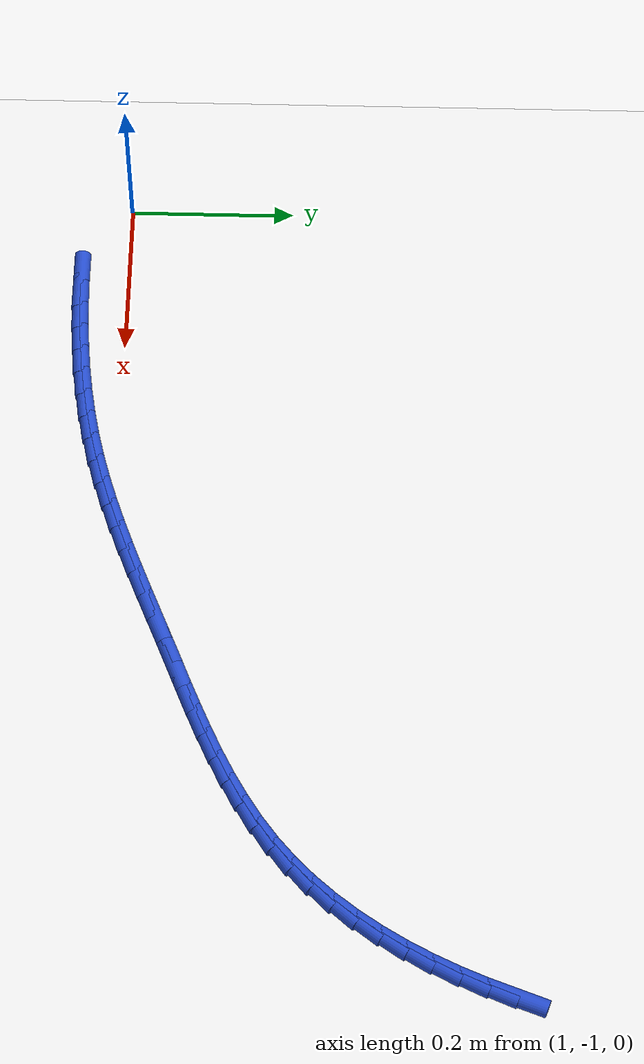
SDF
<sdf version="1.6">
 <world name="default">
  <model name="ground_plane">
   <static>1</static>
   <link name="link">
    <collision name="collision">
     <geometry><plane><normal>0 0 1</normal><size>100 100</size></plane></geometry>
     <surface><friction><ode><mu>100</mu><mu2>50</mu2></ode></friction></surface>
    </collision>
    <visual name="visual">
     <cast_shadows>0</cast_shadows>
     <geometry><plane><normal>0 0 1</normal><size>100 100</size></plane></geometry>
     <material>
      <script><uri>file://media/materials/scripts/gazebo.material</uri><name>Gazebo/WhiteGlow</name></script>
     </material>
    </visual>
   </link>
  </model>
  <model name="line">
   <link name="link_121">
    <pose>2.022401157249746 -0.5406401266735548 0.01 0 1.57 1.2201460712771854</pose>
    <collision name="collision">
     <geometry><cylinder><radius>0.01</radius><length>0.08</length></cylinder></geometry>
    </collision>
    <visual name="visual">
     <material>
      <script><name>Gazebo/Blue</name><uri>file://media/materials/scripts/gazebo.material</uri></script>
     </material>
     <geometry><cylinder><radius>0.01</radius><length>0.08</length></cylinder></geometry>
    </visual>
   </link>
   <link name="link_122">
    <pose>2.0113496812196408 -0.5708547694940168 0.01 0 1.57 1.1777153300258625</pose>
    <collision name="collision">
     <geometry><cylinder><radius>0.01</radius><length>0.08</length></cylinder></geometry>
    </collision>
    <visual name="visual">
     <material>
      <script><name>Gazebo/Blue</name><uri>file://media/materials/scripts/gazebo.material</uri></script>
     </material>
     <geometry><cylinder><radius>0.01</radius><length>0.08</length></cylinder></geometry>
    </visual>
   </link>
   <link name="link_123">
    <pose>1.9989865947254755 -0.6006696888430385 0.01 0 1.57 1.132963567516509</pose>
    <collision name="collision">
     <geometry><cylinder><radius>0.01</radius><length>0.08</length></cylinder></geometry>
    </collision>
    <visual name="visual">
     <material>
      <script><name>Gazebo/Blue</name><uri>file://media/materials/scripts/gazebo.material</uri></script>
     </material>
     <geometry><cylinder><radius>0.01</radius><length>0.08</length></cylinder></geometry>
    </visual>
   </link>
   <link name="link_124">
    <pose>1.985292084605988 -0.6299229837674567 0.01 0 1.57 1.0854020301367593</pose>
    <collision name="collision">
     <geometry><cylinder><radius>0.01</radius><length>0.08</length></cylinder></geometry>
    </collision>
    <visual name="visual">
     <material>
      <script><name>Gazebo/Blue</name><uri>file://media/materials/scripts/gazebo.material</uri></script>
     </material>
     <geometry><cylinder><radius>0.01</radius><length>0.08</length></cylinder></geometry>
    </visual>
   </link>
   <link name="link_125">
    <pose>1.9702481895673045 -0.6584429425280375 0.01 0 1.57 1.0345865798993192</pose>
    <collision name="collision">
     <geometry><cylinder><radius>0.01</radius><length>0.08</length></cylinder></geometry>
    </collision>
    <visual name="visual">
     <material>
      <script><name>Gazebo/Blue</name><uri>file://media/materials/scripts/gazebo.material</uri></script>
     </material>
     <geometry><cylinder><radius>0.01</radius><length>0.08</length></cylinder></geometry>
    </visual>
   </link>
   <link name="link_126">
    <pose>1.9538369483155515 -0.6860578533855447 0.01 0 1.57 0.9800739095729192</pose>
    <collision name="collision">
     <geometry><cylinder><radius>0.01</radius><length>0.08</length></cylinder></geometry>
    </collision>
    <visual name="visual">
     <material>
      <script><name>Gazebo/Blue</name><uri>file://media/materials/scripts/gazebo.material</uri></script>
     </material>
     <geometry><cylinder><radius>0.01</radius><length>0.08</length></cylinder></geometry>
    </visual>
   </link>
   <link name="link_127">
    <pose>1.936040399556855 -0.7125960046007443 0.01 0 1.57 0.9214358655053022</pose>
    <collision name="collision">
     <geometry><cylinder><radius>0.01</radius><length>0.08</length></cylinder></geometry>
    </collision>
    <visual name="visual">
     <material>
      <script><name>Gazebo/Blue</name><uri>file://media/materials/scripts/gazebo.material</uri></script>
     </material>
     <geometry><cylinder><radius>0.01</radius><length>0.08</length></cylinder></geometry>
    </visual>
   </link>
   <link name="link_128">
    <pose>1.916840581997341 -0.7378856844344016 0.01 0 1.57 0.8582831977133409</pose>
    <collision name="collision">
     <geometry><cylinder><radius>0.01</radius><length>0.08</length></cylinder></geometry>
    </collision>
    <visual name="visual">
     <material>
      <script><name>Gazebo/Blue</name><uri>file://media/materials/scripts/gazebo.material</uri></script>
     </material>
     <geometry><cylinder><radius>0.01</radius><length>0.08</length></cylinder></geometry>
    </visual>
   </link>
   <link name="link_129">
    <pose>1.896219534343136 -0.7617551811472821 0.01 0 1.57 0.790300546201519</pose>
    <collision name="collision">
     <geometry><cylinder><radius>0.01</radius><length>0.08</length></cylinder></geometry>
    </collision>
    <visual name="visual">
     <material>
      <script><name>Gazebo/Blue</name><uri>file://media/materials/scripts/gazebo.material</uri></script>
     </material>
     <geometry><cylinder><radius>0.01</radius><length>0.08</length></cylinder></geometry>
    </visual>
   </link>
   <link name="link_130">
    <pose>1.8741592953003658 -0.7840327830001509 0.01 0 1.57 0.717470722703351</pose>
    <collision name="collision">
     <geometry><cylinder><radius>0.01</radius><length>0.08</length></cylinder></geometry>
    </collision>
    <visual name="visual">
     <material>
      <script><name>Gazebo/Blue</name><uri>file://media/materials/scripts/gazebo.material</uri></script>
     </material>
     <geometry><cylinder><radius>0.01</radius><length>0.08</length></cylinder></geometry>
    </visual>
   </link>
   <link name="link_131">
    <pose>1.8506444775453674 -0.8045518806082548 0.01 0 1.57 0.6457622442331977</pose>
    <collision name="collision">
     <geometry><cylinder><radius>0.01</radius><length>0.08</length></cylinder></geometry>
    </collision>
    <visual name="visual">
     <material>
      <script><name>Gazebo/Blue</name><uri>file://media/materials/scripts/gazebo.material</uri></script>
     </material>
     <geometry><cylinder><radius>0.01</radius><length>0.08</length></cylinder></geometry>
    </visual>
   </link>
   <link name="link_132">
    <pose>1.8257448693402467 -0.8233147072680619 0.01 0 1.57 0.5828016140985851</pose>
    <collision name="collision">
     <geometry><cylinder><radius>0.01</radius><length>0.08</length></cylinder></geometry>
    </collision>
    <visual name="visual">
     <material>
      <script><name>Gazebo/Blue</name><uri>file://media/materials/scripts/gazebo.material</uri></script>
     </material>
     <geometry><cylinder><radius>0.01</radius><length>0.08</length></cylinder></geometry>
    </visual>
   </link>
   <link name="link_133">
    <pose>1.799632989004611 -0.8405271370047045 0.01 0 1.57 0.5293149236407083</pose>
    <collision name="collision">
     <geometry><cylinder><radius>0.01</radius><length>0.08</length></cylinder></geometry>
    </collision>
    <visual name="visual">
     <material>
      <script><name>Gazebo/Blue</name><uri>file://media/materials/scripts/gazebo.material</uri></script>
     </material>
     <geometry><cylinder><radius>0.01</radius><length>0.08</length></cylinder></geometry>
    </visual>
   </link>
   <link name="link_134">
    <pose>1.7724874784149056 -0.8564071825065939 0.01 0 1.57 0.4852765789489507</pose>
    <collision name="collision">
     <geometry><cylinder><radius>0.01</radius><length>0.08</length></cylinder></geometry>
    </collision>
    <visual name="visual">
     <material>
      <script><name>Gazebo/Blue</name><uri>file://media/materials/scripts/gazebo.material</uri></script>
     </material>
     <geometry><cylinder><radius>0.01</radius><length>0.08</length></cylinder></geometry>
    </visual>
   </link>
   <link name="link_135">
    <pose>1.7444869794475752 -0.8711728564621415 0.01 0 1.57 0.4504754464801084</pose>
    <collision name="collision">
     <geometry><cylinder><radius>0.01</radius><length>0.08</length></cylinder></geometry>
    </collision>
    <visual name="visual">
     <material>
      <script><name>Gazebo/Blue</name><uri>file://media/materials/scripts/gazebo.material</uri></script>
     </material>
     <geometry><cylinder><radius>0.01</radius><length>0.08</length></cylinder></geometry>
    </visual>
   </link>
   <link name="link_136">
    <pose>1.7158101339790646 -0.8850421715597571 0.01 0 1.57 0.4246317801954542</pose>
    <collision name="collision">
     <geometry><cylinder><radius>0.01</radius><length>0.08</length></cylinder></geometry>
    </collision>
    <visual name="visual">
     <material>
      <script><name>Gazebo/Blue</name><uri>file://media/materials/scripts/gazebo.material</uri></script>
     </material>
     <geometry><cylinder><radius>0.01</radius><length>0.08</length></cylinder></geometry>
    </visual>
   </link>
   <link name="link_137">
    <pose>1.68663558388582 -0.8982331404878526 0.01 0 1.57 0.4074816716277523</pose>
    <collision name="collision">
     <geometry><cylinder><radius>0.01</radius><length>0.08</length></cylinder></geometry>
    </collision>
    <visual name="visual">
     <material>
      <script><name>Gazebo/Blue</name><uri>file://media/materials/scripts/gazebo.material</uri></script>
     </material>
     <geometry><cylinder><radius>0.01</radius><length>0.08</length></cylinder></geometry>
    </visual>
   </link>
   <link name="link_138">
    <pose>1.657141971044284 -0.9109637759348385 0.01 0 1.57 0.39883273714841</pose>
    <collision name="collision">
     <geometry><cylinder><radius>0.01</radius><length>0.08</length></cylinder></geometry>
    </collision>
    <visual name="visual">
     <material>
      <script><name>Gazebo/Blue</name><uri>file://media/materials/scripts/gazebo.material</uri></script>
     </material>
     <geometry><cylinder><radius>0.01</radius><length>0.08</length></cylinder></geometry>
    </visual>
   </link>
   <link name="link_139">
    <pose>1.6275079373309052 -0.9234520905891255 0.01 0 1.57 0.3985652432839151</pose>
    <collision name="collision">
     <geometry><cylinder><radius>0.01</radius><length>0.08</length></cylinder></geometry>
    </collision>
    <visual name="visual">
     <material>
      <script><name>Gazebo/Blue</name><uri>file://media/materials/scripts/gazebo.material</uri></script>
     </material>
     <geometry><cylinder><radius>0.01</radius><length>0.08</length></cylinder></geometry>
    </visual>
   </link>
   <link name="link_140">
    <pose>1.597911564613412 -0.9359152124473294 0.01 0 1.57 0.40245217877768674</pose>
    <collision name="collision">
     <geometry><cylinder><radius>0.01</radius><length>0.08</length></cylinder></geometry>
    </collision>
    <visual name="visual">
     <material>
      <script><name>Gazebo/Blue</name><uri>file://media/materials/scripts/gazebo.material</uri></script>
     </material>
     <geometry><cylinder><radius>0.01</radius><length>0.08</length></cylinder></geometry>
    </visual>
   </link>
   <link name="link_141">
    <pose>1.5684570804567337 -0.9484535957934614 0.01 0 1.57 0.402048616801214</pose>
    <collision name="collision">
     <geometry><cylinder><radius>0.01</radius><length>0.08</length></cylinder></geometry>
    </collision>
    <visual name="visual">
     <material>
      <script><name>Gazebo/Blue</name><uri>file://media/materials/scripts/gazebo.material</uri></script>
     </material>
     <geometry><cylinder><radius>0.01</radius><length>0.08</length></cylinder></geometry>
    </visual>
   </link>
   <link name="link_142">
    <pose>1.5391018763914095 -0.9609357259588005 0.01 0 1.57 0.3963013306578892</pose>
    <collision name="collision">
     <geometry><cylinder><radius>0.01</radius><length>0.08</length></cylinder></geometry>
    </collision>
    <visual name="visual">
     <material>
      <script><name>Gazebo/Blue</name><uri>file://media/materials/scripts/gazebo.material</uri></script>
     </material>
     <geometry><cylinder><radius>0.01</radius><length>0.08</length></cylinder></geometry>
    </visual>
   </link>
   <link name="link_143">
    <pose>1.5097859890235277 -0.9732026712739774 0.01 0 1.57 0.38514694689223605</pose>
    <collision name="collision">
     <geometry><cylinder><radius>0.01</radius><length>0.08</length></cylinder></geometry>
    </collision>
    <visual name="visual">
     <material>
      <script><name>Gazebo/Blue</name><uri>file://media/materials/scripts/gazebo.material</uri></script>
     </material>
     <geometry><cylinder><radius>0.01</radius><length>0.08</length></cylinder></geometry>
    </visual>
   </link>
   <link name="link_144">
    <pose>1.4804494549591753 -0.985095500069623 0.01 0 1.57 0.3685203671357126</pose>
    <collision name="collision">
     <geometry><cylinder><radius>0.01</radius><length>0.08</length></cylinder></geometry>
    </collision>
    <visual name="visual">
     <material>
      <script><name>Gazebo/Blue</name><uri>file://media/materials/scripts/gazebo.material</uri></script>
     </material>
     <geometry><cylinder><radius>0.01</radius><length>0.08</length></cylinder></geometry>
    </visual>
   </link>
   <link name="link_145">
    <pose>1.4510323108044398 -0.9964552806763681 0.01 0 1.57 0.34636467964919315</pose>
    <collision name="collision">
     <geometry><cylinder><radius>0.01</radius><length>0.08</length></cylinder></geometry>
    </collision>
    <visual name="visual">
     <material>
      <script><name>Gazebo/Blue</name><uri>file://media/materials/scripts/gazebo.material</uri></script>
     </material>
     <geometry><cylinder><radius>0.01</radius><length>0.08</length></cylinder></geometry>
    </visual>
   </link>
   <link name="link_146">
    <pose>1.4214745931654105 -1.0071230814248435 0.01 0 1.57 0.3186465001373963</pose>
    <collision name="collision">
     <geometry><cylinder><radius>0.01</radius><length>0.08</length></cylinder></geometry>
    </collision>
    <visual name="visual">
     <material>
      <script><name>Gazebo/Blue</name><uri>file://media/materials/scripts/gazebo.material</uri></script>
     </material>
     <geometry><cylinder><radius>0.01</radius><length>0.08</length></cylinder></geometry>
    </visual>
   </link>
   <link name="link_147">
    <pose>1.3917163386481737 -1.01693997064568 0.01 0 1.57 0.2853767979996964</pose>
    <collision name="collision">
     <geometry><cylinder><radius>0.01</radius><length>0.08</length></cylinder></geometry>
    </collision>
    <visual name="visual">
     <material>
      <script><name>Gazebo/Blue</name><uri>file://media/materials/scripts/gazebo.material</uri></script>
     </material>
     <geometry><cylinder><radius>0.01</radius><length>0.08</length></cylinder></geometry>
    </visual>
   </link>
   <link name="link_148">
    <pose>1.3616975838588177 -1.0257470166695086 0.01 0 1.57 0.24706516929660402</pose>
    <collision name="collision">
     <geometry><cylinder><radius>0.01</radius><length>0.08</length></cylinder></geometry>
    </collision>
    <visual name="visual">
     <material>
      <script><name>Gazebo/Blue</name><uri>file://media/materials/scripts/gazebo.material</uri></script>
     </material>
     <geometry><cylinder><radius>0.01</radius><length>0.08</length></cylinder></geometry>
    </visual>
   </link>
   <link name="link_149">
    <pose>1.3313635129929353 -1.0333978175704543 0.01 0 1.57 0.20833932840999203</pose>
    <collision name="collision">
     <geometry><cylinder><radius>0.01</radius><length>0.08</length></cylinder></geometry>
    </collision>
    <visual name="visual">
     <material>
      <script><name>Gazebo/Blue</name><uri>file://media/materials/scripts/gazebo.material</uri></script>
     </material>
     <geometry><cylinder><radius>0.01</radius><length>0.08</length></cylinder></geometry>
    </visual>
   </link>
   <link name="link_150">
    <pose>1.3007133368631882 -1.0398774775680064 0.01 0 1.57 0.17194708712146475</pose>
    <collision name="collision">
     <geometry><cylinder><radius>0.01</radius><length>0.08</length></cylinder></geometry>
    </collision>
    <visual name="visual">
     <material>
      <script><name>Gazebo/Blue</name><uri>file://media/materials/scripts/gazebo.material</uri></script>
     </material>
     <geometry><cylinder><radius>0.01</radius><length>0.08</length></cylinder></geometry>
    </visual>
   </link>
   <link name="link_151">
    <pose>1.2697785463489304 -1.045249673766152 0.01 0 1.57 0.1379390060486641</pose>
    <collision name="collision">
     <geometry><cylinder><radius>0.01</radius><length>0.08</length></cylinder></geometry>
    </collision>
    <visual name="visual">
     <material>
      <script><name>Gazebo/Blue</name><uri>file://media/materials/scripts/gazebo.material</uri></script>
     </material>
     <geometry><cylinder><radius>0.01</radius><length>0.08</length></cylinder></geometry>
    </visual>
   </link>
   <link name="link_152">
    <pose>1.2385910656051904 -1.0495791379048474 0.01 0 1.57 0.10630423944596037</pose>
    <collision name="collision">
     <geometry><cylinder><radius>0.01</radius><length>0.08</length></cylinder></geometry>
    </collision>
    <visual name="visual">
     <material>
      <script><name>Gazebo/Blue</name><uri>file://media/materials/scripts/gazebo.material</uri></script>
     </material>
     <geometry><cylinder><radius>0.01</radius><length>0.08</length></cylinder></geometry>
    </visual>
   </link>
   <link name="link_153">
    <pose>1.2071828187869942 -1.0529306017240474 0.01 0 1.57 0.07701257203477058</pose>
    <collision name="collision">
     <geometry><cylinder><radius>0.01</radius><length>0.08</length></cylinder></geometry>
    </collision>
    <visual name="visual">
     <material>
      <script><name>Gazebo/Blue</name><uri>file://media/materials/scripts/gazebo.material</uri></script>
     </material>
     <geometry><cylinder><radius>0.01</radius><length>0.08</length></cylinder></geometry>
    </visual>
   </link>
   <link name="link_154">
    <pose>1.1755857300493693 -1.0553687969637087 0.01 0 1.57 0.05001990562892186</pose>
    <collision name="collision">
     <geometry><cylinder><radius>0.01</radius><length>0.08</length></cylinder></geometry>
    </collision>
    <visual name="visual">
     <material>
      <script><name>Gazebo/Blue</name><uri>file://media/materials/scripts/gazebo.material</uri></script>
     </material>
     <geometry><cylinder><radius>0.01</radius><length>0.08</length></cylinder></geometry>
    </visual>
   </link>
   <link name="link_155">
    <pose>1.1438317235473427 -1.0569584553637856 0.01 0 1.57 0.0252731176000966</pose>
    <collision name="collision">
     <geometry><cylinder><radius>0.01</radius><length>0.08</length></cylinder></geometry>
    </collision>
    <visual name="visual">
     <material>
      <script><name>Gazebo/Blue</name><uri>file://media/materials/scripts/gazebo.material</uri></script>
     </material>
     <geometry><cylinder><radius>0.01</radius><length>0.08</length></cylinder></geometry>
    </visual>
   </link>
   <link name="link_156">
    <pose>1.1119527234359412 -1.0577643086642343 0.01 0 1.57 0.0027142355452813853</pose>
    <collision name="collision">
     <geometry><cylinder><radius>0.01</radius><length>0.08</length></cylinder></geometry>
    </collision>
    <visual name="visual">
     <material>
      <script><name>Gazebo/Blue</name><uri>file://media/materials/scripts/gazebo.material</uri></script>
     </material>
     <geometry><cylinder><radius>0.01</radius><length>0.08</length></cylinder></geometry>
    </visual>
   </link>
  </model>
 </world>
</sdf>
